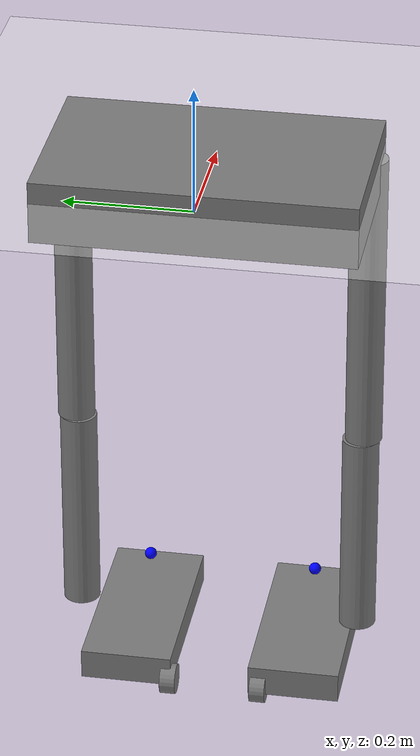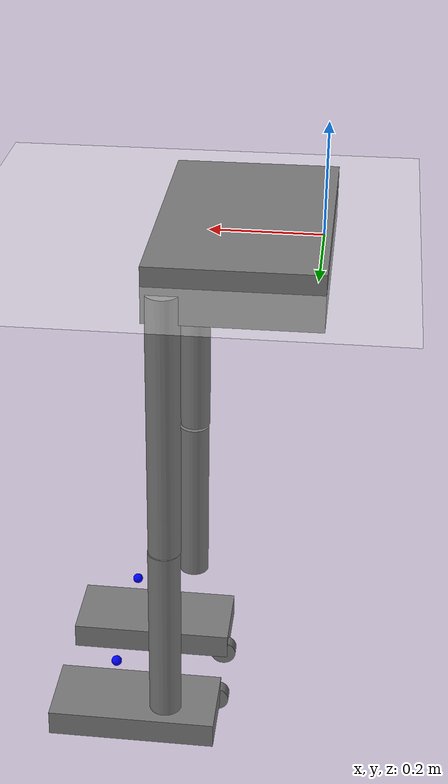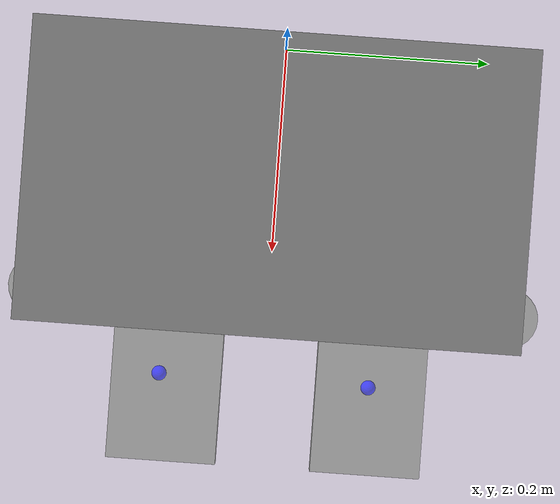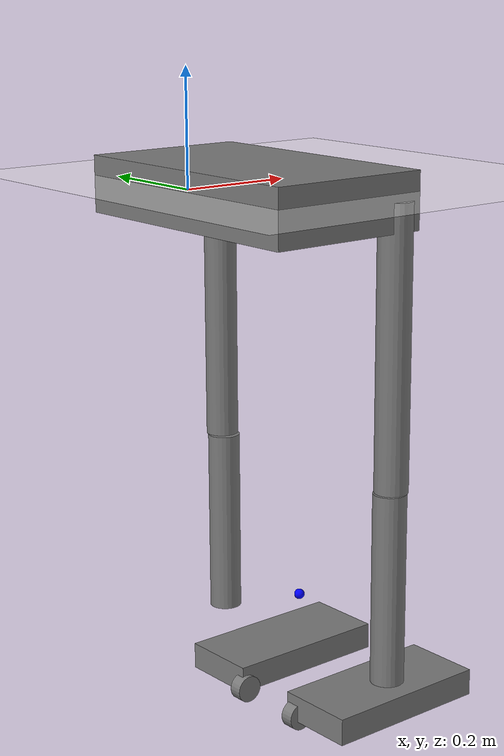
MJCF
<mujoco model="njit exo flat terrain scene">
  <include file="njit_exo5.xml"/>

  <statistic center="0 0 0.1" extent="0.8" meansize="0.04"/>

  <visual>
    <headlight diffuse=".8 .8 .8" ambient=".2 .2 .2" specular="1 1 1"/>
    <rgba force="1 0 0 1"/>
    <global azimuth="120" elevation="-20"/>
    <map force="0.01"/>
    <scale forcewidth="0.3" contactwidth="0.5" contactheight="0.2"/>
    <quality shadowsize="8192"/>
  </visual>

  <asset>
    <texture type="skybox" builtin="gradient" rgb1="1 1 1" rgb2="1 1 1" width="800" height="800"/>
    <texture type="2d" name="groundplane" builtin="checker" mark="edge" rgb1="1 1 1" rgb2="1 1 1" markrgb="0 0 0"
      width="300" height="300"/>
    <material name="groundplane" texture="groundplane" texuniform="true" texrepeat="5 5" reflectance="0"/>
  </asset>

  <worldbody>
    <geom name="floor" size="0 0 0.01" type="plane" material="groundplane" contype="1" conaffinity="0" priority="1"
      friction="0.6" condim="3"/>
    <camera name="front" pos="1.5 -0.5 0.5" xyaxes="0.342 0.940 0.000 -0.321 0.117 0.940" mode="trackcom"/>
    <camera name="track" pos="1.0 -1.5 0.5" mode="targetbodycom" target="exo_pelvis"/>
  </worldbody>

  <include file="sensor.xml"/>

  <keyframe>
    <key name="home"
      qpos="
    0 0 0.98
    1 0 0 0
    0.2 -0.5 0.26 0.0
    0.2 -0.5 0.26 0.0"
      ctrl="
    0 0 0 0
    0 0 0 0"/>
  </keyframe>
</mujoco>

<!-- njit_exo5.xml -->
<mujoco model="KF_NJIT_Rehab_Exo">
  <compiler angle="radian" meshdir="assets" autolimits="true"/>

  <option iterations="3" ls_iterations="5" timestep="0.002" integrator="Euler">
    <flag eulerdamp="disable"/>
  </option>

  <default>
    <geom type="mesh" solimp="0.95 0.99 0.001" solref="0.005 1"/>

    <default class="visual">
      <geom group="1" type="mesh" contype="0" conaffinity="0" rgba="0.48 0.48 0.48 1"/>
    </default>
    <default class="collision">
      <geom group="0" type="box" rgba="0.8 0.2 0.2 0.5"/>
    </default>

    <default class="motorized">
       <joint damping="1.0" frictionloss="0.5" armature="0.01"/>
    </default>
  </default>

  <worldbody>
    <body name="base" pos="0 0 0">
      <freejoint name="root"/>

      <inertial pos="0 0 0" mass="0.01" fullinertia="1e-4 1e-4 1e-4 0 0 0"/>

      <body name="exo_pelvis" pos="0 0 0" euler="1.5707 0 0">
        <inertial pos="0.164969 -0.016465 -0.00031201" mass="3.40529" fullinertia="0.108005 0.140273 0.0409718 0.00342849 0.00011722 -6.056e-05"/>
        <geom type="box" size="0.15 0.05 0.25" pos="0.134969 -0.016465 -0.00031201" class="visual"/>

        <site name="imu" pos="0 0 0" euler="-1.5707 0 0" size="0.01" rgba="1 0 0 1"/>

        <body name="Battery" pos="0 0 0">
           <inertial pos="-0.0292753 0.0823604 -0.00041407" mass="2.2" fullinertia="0.00909547 0.00798838 0.00423978 -0.00038364 -7.94e-06 -3.83e-06"/>
        </body>

        <body name="r_exo_femur" pos="0.25 -0.06 0.21">
          <inertial pos="-0.00012287 -0.205637 0.0391034" mass="2.77725" fullinertia="0.0378701 0.00419727 0.0353309 7.8e-05 -0.00043864 -0.00038322"/>
          <joint name="r_exo_femur" class="motorized" axis="0 0 1" range="-1.309 1.309"/>
          <geom type="cylinder" size="0.03 0.25" pos="-0.00012287 -0.205637 0.0201034" euler="1.57 0 0" class="visual"/>

          <body name="r_exo_tibia" pos="0 -0.41 0">
            <inertial pos="0.00130324 -0.0640757 0.0163233" mass="0.60426" fullinertia="0.00549709 0.00033891 0.00532813 -4.48e-05 -6.27e-06 -0.00064841"/>
            <joint name="r_exo_tibia" class="motorized" axis="0 0 1" range="-2.094 0.0"/>
            <geom type="cylinder" size="0.03 0.175" pos="0.00130324 -0.2240757 0.0163233" euler="1.57 0 0" class="visual"/>

            <body name="r_shank_support" pos="0 -0.25 0">
              <inertial pos="-0.0220563 -0.0501763 -0.0332489" mass="0.24824" fullinertia="0.0009242 0.00070211 0.00054663 0.00012989 -0.00019488 0.00018796"/>

              <body name="r_ankle_coupling" pos="0 -0.129 0">
                <inertial pos="0.0270888 -0.0211255 -0.0183098" mass="0.194678" fullinertia="0.00020434 0.00086131 0.00083139 -0.00019895 -3.6e-07 -1.193e-05"/>
                <joint name="r_ankle_coupling" class="motorized" axis="0 0 1" range="-0.6981 0.2618"/>
                <geom type="cylinder" size="0.0254 0.0127" pos="-0.0784998 -0.1185 -0.135" class="visual"/>

                <body name="r_foot" pos="0.11 0.001 -0.0699999" euler="0 0 0.29">
                  <inertial pos="-0.0647188 -0.0863198 0.00643328" mass="1.39879" fullinertia="0.00411567 0.0161809 0.0165848 0.00314958 -0.00066379 -0.00019919"/>
                  <joint name="r_foot" class="motorized" axis="1 0 0" range="-0.2618 0.2618"/>

                  <geom type="box" size="0.16 0.025 0.075" pos="-0.0647188 -0.0863198 -0.00643328" euler="0 0 -0.285" class="visual"/>

                  <site name="r_foot" pos="0 0 0" euler="-1.57 0 0" size="0.01" rgba="0 0 1 1"/>

                  <geom name="r_foot_col" type="box" size="0.16 0.025 0.075"
                        pos="-0.0647188 -0.0863198 -0.00643328"
                        euler="0 0 -0.285"
                        rgba="0.8 0.2 0.2 0.5" group="0"
                        friction="2.0 0.005 0.0001"
                        solimp="0.95 0.99 0.001" solref="0.005 1"
                        contype="1" conaffinity="1" priority="1" condim="3"/>
                </body>
              </body>
            </body>
          </body>
        </body>

        <body name="l_exo_femur" pos="0.25 -0.06 -0.21">
          <inertial pos="-0.00012287 -0.205637 -0.0391034" mass="2.77725" fullinertia="0.0378701 0.00419727 0.0353309 7.8e-05 0.00043864 0.00038322"/>
          <joint name="l_exo_femur" class="motorized" axis="0 0 1" range="-1.309 1.309"/>
          <geom type="cylinder" size="0.03 0.25" pos="-0.00012287 -0.205637 -0.0291034" euler="1.57 0 0" class="visual"/>

          <body name="l_exo_tibia" pos="0 -0.41 0">
            <inertial pos="0.00130324 -0.0640757 -0.0163233" mass="0.60426" fullinertia="0.00549709 0.00033891 0.00532813 -4.48e-05 6.27e-06 0.00064841"/>
            <joint name="l_exo_tibia" class="motorized" axis="0 0 1" range="-2.094 0.0"/>
            <geom type="cylinder" size="0.03 0.175" pos="0.00130324 -0.2240757 -0.0263233" euler="1.57 0 0" class="visual"/>

            <body name="l_shank_support" pos="0 -0.25 0">
              <inertial pos="-0.0220563 -0.0501763 0.0332489" mass="0.24824" fullinertia="0.0009242 0.00070211 0.00054663 0.00012989 0.00019488 -0.00018796"/>

              <body name="l_ankle_coupling" pos="0 -0.129 0">
                <inertial pos="0.0270888 -0.0211255 0.0183098" mass="0.194678" fullinertia="0.00020434 0.00086131 0.00083139 -0.00019895 3.6e-07 1.193e-05"/>
                <joint name="l_ankle_coupling" class="motorized" axis="0 0 1" range="-0.6981 0.2618"/>
                <geom type="cylinder" size="0.0254 0.0127" pos="-0.0784998 -0.1185 0.135" class="visual"/>

                <body name="l_foot" pos="0.11 0.001 0.0699999" euler="0 0 0.29">
                  <inertial pos="-0.0647188 -0.0863198 -0.00643328" mass="1.39879" fullinertia="0.00411567 0.0161809 0.0165848 0.00314958 0.00066379 0.00019919"/>
                  <joint name="l_foot" class="motorized" axis="-1 0 0" range="-0.2618 0.2618"/>

                  <geom type="box" size="0.16 0.025 0.075" pos="-0.0647188 -0.0863198 -0.00643328" euler="0 0 -0.285" class="visual"/>

                  <site name="l_foot" pos="0 0 0" euler="-1.57 0 0" size="0.01" rgba="0 0 1 1"/>

                  <geom name="l_foot_col" type="box" size="0.16 0.025 0.075"
                        pos="-0.0647188 -0.0863198 -0.00643328"
                        euler="0 0 -0.285"
                        rgba="0.8 0.2 0.2 0.5" group="0"
                        friction="2.0 0.005 0.0001"
                        solimp="0.95 0.99 0.001" solref="0.005 1"
                        contype="1" conaffinity="1" priority="1" condim="3"/>
                </body>
              </body>
            </body>
          </body>
        </body>

      </body>
    </body>
  </worldbody>

  <actuator>
    <position name="r_hip" joint="r_exo_femur" kp="200" forcerange="-100 100" ctrllimited="true" ctrlrange="-1.3 1.3"/>
    <position name="l_hip" joint="l_exo_femur" kp="200" forcerange="-100 100" ctrllimited="true" ctrlrange="-1.3 1.3"/>
    <position name="r_knee" joint="r_exo_tibia" kp="200" forcerange="-100 100" ctrllimited="true" ctrlrange="-2.0 0"/>
    <position name="l_knee" joint="l_exo_tibia" kp="200" forcerange="-100 100" ctrllimited="true" ctrlrange="-2.0 0"/>

    <position name="r_ankle" joint="r_ankle_coupling" kp="50" forcerange="-50 50" ctrllimited="true" ctrlrange="-0.7 0.3"/>
    <position name="l_ankle" joint="l_ankle_coupling" kp="50" forcerange="-50 50" ctrllimited="true" ctrlrange="-0.7 0.3"/>
    <position name="r_toe" joint="r_foot" kp="30" forcerange="-20 20" ctrllimited="true" ctrlrange="-0.3 0.3"/>
    <position name="l_toe" joint="l_foot" kp="30" forcerange="-20 20" ctrllimited="true" ctrlrange="-0.3 0.3"/>
  </actuator>

  <sensor>
    <jointpos name="r_hip_pos"   joint="r_exo_femur"/>
    <jointpos name="l_hip_pos"   joint="l_exo_femur"/>
    <jointpos name="r_knee_pos"  joint="r_exo_tibia"/>
    <jointpos name="l_knee_pos"  joint="l_exo_tibia"/>
    <jointpos name="r_ankle_pos" joint="r_ankle_coupling"/>
    <jointpos name="l_ankle_pos" joint="l_ankle_coupling"/>

    <jointvel name="r_hip_vel"   joint="r_exo_femur"/>
    <jointvel name="l_hip_vel"   joint="l_exo_femur"/>
    <jointvel name="r_knee_vel"  joint="r_exo_tibia"/>
    <jointvel name="l_knee_vel"  joint="l_exo_tibia"/>
    <jointvel name="r_ankle_vel" joint="r_ankle_coupling"/>
    <jointvel name="l_ankle_vel" joint="l_ankle_coupling"/>

    <accelerometer name="accelerometer" site="imu"/>
    <gyro name="gyro" site="imu"/>
    <framezaxis name="upvector" objtype="site" objname="imu"/>

    <velocimeter name="local_linvel" site="imu"/>
    <framelinvel name="global_linvel" objtype="site" objname="imu"/>
    <frameangvel name="global_angvel" objtype="site" objname="imu"/>

    <framepos name="l_foot_pos" objtype="site" objname="l_foot"/>
    <framepos name="r_foot_pos" objtype="site" objname="r_foot"/>

    <velocimeter name="l_foot_global_linvel" site="l_foot"/>
    <velocimeter name="r_foot_global_linvel" site="r_foot"/>
  </sensor>

</mujoco>

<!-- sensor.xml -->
<mujoco>
  <sensor>
    <contact name="l_foot_col_floor_found" geom1="l_foot_col" geom2="floor" reduce="mindist" num="1" data="found"/>
    <contact name="r_foot_col_floor_found" geom1="r_foot_col" geom2="floor" reduce="mindist" num="1" data="found"/>
  </sensor>
</mujoco>
